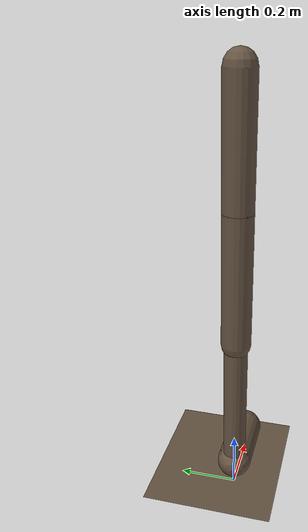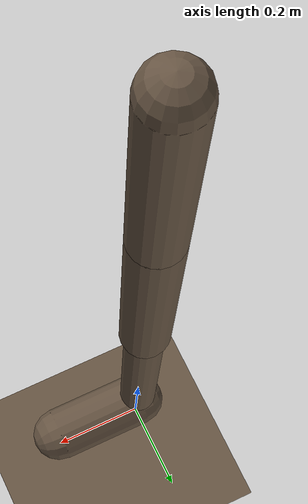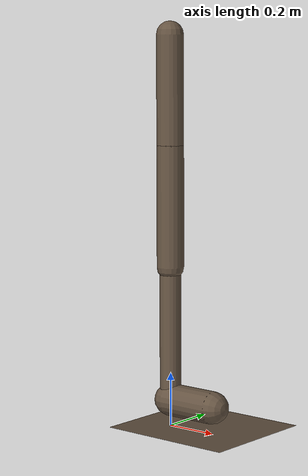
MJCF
<mujoco model="two_link_walker">
  <compiler angle="radian" autolimits="true"/>
  <default>
    <joint limited="true" armature="0.01" damping="0.1"/>
    <geom contype="0" conaffinity="0" friction="0.7 0.1 0.1" rgba="0.4 0.33 0.26 1.0"/>
  </default>
  <!-- Removed RK4 integrator for brax. -->
  <option timestep="0.002" iterations="4" />
  <custom>
    <!-- brax custom params -->
    <numeric data="5000" name="constraint_limit_stiffness"/>
    <numeric data="10000" name="constraint_stiffness"/>
    <numeric data="20" name="constraint_ang_damping"/>
    <numeric data="1" name="vel_damping"/>
    <numeric data="-0.05" name="ang_damping"/>
    <numeric data="0" name="spring_mass_scale"/>
    <numeric data="1" name="spring_inertia_scale"/>
    <numeric data="15" name="solver_maxls"/>
    <numeric data="20" name="matrix_inv_iterations"/>
  </custom>
  <worldbody>
    <geom name="floor" size="40 40 40" type="plane" conaffinity="1" material="MatPlane"/>
    <light pos="0 0 1.3" dir="0 0 -1" directional="true" cutoff="100" exponent="1" diffuse="1 1 1" specular="0.1 0.1 0.1"/>
    <body name="torso_a_1" pos="0 0 1.25">
      <!-- Brax does not support stacked joints at different locations, so we move rootx and rootz
        from (0, 0, 0) to the rooty position at (0, 0, 1.25). Joint ref was also removed. -->
      <joint name="rootx" pos="0 0 0" axis="1 0 0" limited="false" type="slide" armature="0" damping="0"/>
      <joint name="rootz" pos="0 0 0" axis="0 0 1" limited="false" type="slide" armature="0" damping="0"/>
      <joint name="rooty" pos="0 0 0" axis="0 1 0" limited="false" armature="0" damping="0"/>
      <geom name="torso_geom" size="0.05 0.2" type="capsule" contype="1" friction="0.9 0.1 0.1"/>
      <camera name="track" pos="0 -3 -0.25" quat="0.707107 0.707107 0 0" mode="trackcom"/>
      <body name="thigh" pos="0 0 -0.2">
        <joint name="thigh_joint" pos="0 0 0" axis="0 -1 0" range="-2.61799 0"/>
        <geom name="thigh_geom" size="0.05 0.225" pos="0 0 -0.225" type="capsule" friction="0.9 0.1 0.1"/>
        <body name="leg" pos="0 0 -0.7">
          <joint name="leg_joint" pos="0 0 0.25" axis="0 -1 0" range="-2.61799 0"/>
          <geom name="leg_geom" size="0.04 0.25" type="capsule" friction="0.9 0.1 0.1"/>
          <body name="foot" pos="0.2 0 -0.35">
            <joint name="foot_joint" pos="-0.2 0 0.1" axis="0 -1 0" range="-0.785398 0.785398"/>
            <geom name="foot_geom" size="0.06 0.1" pos="-0.1 0 0.1" quat="0.707107 0 -0.707107 0" type="capsule" contype="1" friction="0.9 0.1 0.1"/>
          </body>
        </body>
      </body>
      <body name="thigh_left" pos="0 0 -0.2">
        <joint name="thigh_left_joint" pos="0 0 0" axis="0 -1 0" range="-2.61799 0"/>
        <geom name="thigh_left_geom" size="0.05 0.225" pos="0 0 -0.225" type="capsule" friction="0.9 0.1 0.1"/>
        <body name="leg_left" pos="0 0 -0.7">
          <joint name="leg_left_joint" pos="0 0 0.25" axis="0 -1 0" range="-2.61799 0"/>
          <geom name="leg_left_geom" size="0.04 0.25" type="capsule" friction="0.9 0.1 0.1"/>
          <body name="foot_left" pos="0.2 0 -0.35">
            <joint name="foot_left_joint" pos="-0.2 0 0.1" axis="0 -1 0" range="-0.785398 0.785398"/>
            <geom name="foot_left_geom" size="0.06 0.1" pos="-0.1 0 0.1" quat="0.707107 0 -0.707107 0" type="capsule" contype="1" friction="1.9 0.1 0.1"/>
          </body>
        </body>
      </body>
    </body>

    <body name="torso_a_2" pos="0 0 1.25">
      <!-- Brax does not support stacked joints at different locations, so we move rootx and rootz
        from (0, 0, 0) to the rooty position at (0, 0, 1.25). Joint ref was also removed. -->
      <joint name="rootx_a_2" pos="0 0 0" axis="1 0 0" limited="false" type="slide" armature="0" damping="0"/>
      <joint name="rootz_a_2" pos="0 0 0" axis="0 0 1" limited="false" type="slide" armature="0" damping="0"/>
      <joint name="rooty_a_2" pos="0 0 0" axis="0 1 0" limited="false" armature="0" damping="0"/>
      <geom name="torso_geom_a_2" size="0.05 0.2" type="capsule" contype="1" friction="0.9 0.1 0.1"/>
      <camera name="track" pos="0 -3 -0.25" quat="0.707107 0.707107 0 0" mode="trackcom"/>
      <body name="thigh_a_2" pos="0 0 -0.2">
        <joint name="thigh_joint_a_2" pos="0 0 0" axis="0 -1 0" range="-2.61799 0"/>
        <geom name="thigh_geom_a_2" size="0.05 0.225" pos="0 0 -0.225" type="capsule" friction="0.9 0.1 0.1"/>
        <body name="leg_a_2" pos="0 0 -0.7">
          <joint name="leg_joint_a_2" pos="0 0 0.25" axis="0 -1 0" range="-2.61799 0"/>
          <geom name="leg_geom_a_2" size="0.04 0.25" type="capsule" friction="0.9 0.1 0.1"/>
          <body name="foot_a_2" pos="0.2 0 -0.35">
            <joint name="foot_joint_a_2" pos="-0.2 0 0.1" axis="0 -1 0" range="-0.785398 0.785398"/>
            <geom name="foot_geom_a_2" size="0.06 0.1" pos="-0.1 0 0.1" quat="0.707107 0 -0.707107 0" type="capsule" contype="1" friction="0.9 0.1 0.1"/>
          </body>
        </body>
      </body>
      <body name="thigh_left" pos="0 0 -0.2">
        <joint name="thigh_left_joint" pos="0 0 0" axis="0 -1 0" range="-2.61799 0"/>
        <geom name="thigh_left_geom" size="0.05 0.225" pos="0 0 -0.225" type="capsule" friction="0.9 0.1 0.1"/>
        <body name="leg_left" pos="0 0 -0.7">
          <joint name="leg_left_joint" pos="0 0 0.25" axis="0 -1 0" range="-2.61799 0"/>
          <geom name="leg_left_geom" size="0.04 0.25" type="capsule" friction="0.9 0.1 0.1"/>
          <body name="foot_left" pos="0.2 0 -0.35">
            <joint name="foot_left_joint" pos="-0.2 0 0.1" axis="0 -1 0" range="-0.785398 0.785398"/>
            <geom name="foot_left_geom" size="0.06 0.1" pos="-0.1 0 0.1" quat="0.707107 0 -0.707107 0" type="capsule" contype="1" friction="1.9 0.1 0.1"/>
          </body>
        </body>
      </body>
    </body>
  </worldbody>
  <actuator>
    <motor ctrlrange="-1.0 1.0" gear="100" joint="thigh_joint"/>
    <motor ctrlrange="-1.0 1.0" gear="100" joint="leg_joint"/>
    <motor ctrlrange="-1.0 1.0" gear="100" joint="foot_joint"/>
    <motor ctrlrange="-1.0 1.0" gear="100" joint="thigh_left_joint"/>
    <motor ctrlrange="-1.0 1.0" gear="100" joint="leg_left_joint"/>
    <motor ctrlrange="-1.0 1.0" gear="100" joint="foot_left_joint"/>
  </actuator>
  <asset>
      <texture type="skybox" builtin="gradient" rgb1=".4 .5 .6" rgb2="0 0 0"
          width="100" height="100"/>
      <texture builtin="flat" height="1278" mark="cross" markrgb="1 1 1" name="texgeom" random="0.01" rgb1="0.8 0.6 0.4" rgb2="0.8 0.6 0.4" type="cube" width="127"/>
      <texture builtin="checker" height="100" name="texplane" rgb1="0 0 0" rgb2="0.8 0.8 0.8" type="2d" width="100"/>
      <material name="MatPlane" reflectance="0.5" shininess="1" specular="1" texrepeat="60 60" texture="texplane"/>
      <material name="geom" texture="texgeom" texuniform="true"/>
  </asset>
</mujoco>
